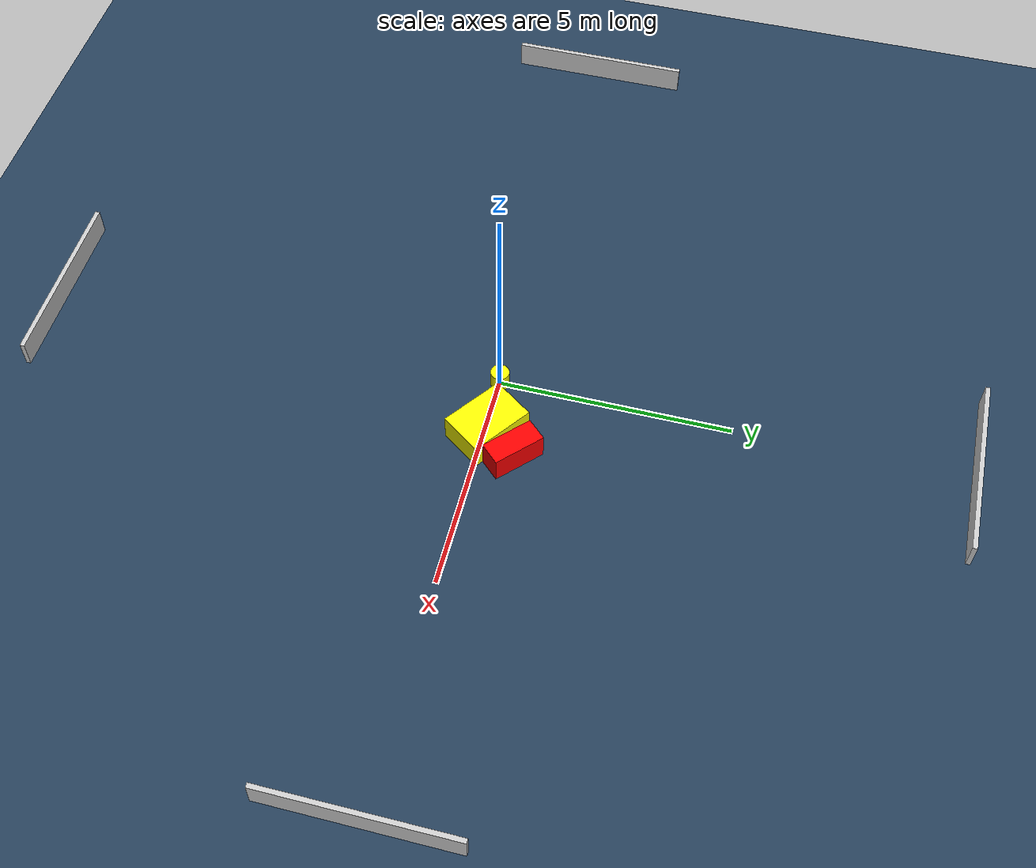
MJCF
<?xml version="1.0" ?>
<mujoco model="generated_environment">
  <option timestep="0.01" integrator="RK4" cone="elliptic"/>
  <default>
    <geom density="1"/>
  </default>
  <asset>
    <texture builtin="gradient" height="3072" name="skybox" rgb1="0.3 0.5 0.7" rgb2="0 0 0" type="skybox" width="512"/>
    <texture builtin="checker" height="300" name="groundplane" rgb1="0.2 0.3 0.4" rgb2="0.1 0.2 0.3" type="2d" width="300"/>
    <material name="groundplane" reflectance="0.2" texrepeat="5 5" texture="groundplane"/>
  </asset>
  <worldbody>
    <light dir="0 0 -1" directional="true" pos="0 0 1.5"/>
    <geom condim="3" friction="0.5 0.005 0.001" material="groundplane" name="floor" pos="0 0 0" size="0 0 0.05" type="plane"/>
    <body name="walls">
      <geom name="wall_1" condim="4" pos="-10.0 0.0 0.3" rgba="0.800000011920929 0.800000011920929 0.800000011920929 1.0" size="0.05 2.0 0.3" type="box"/>
      <geom name="wall_2" condim="4" pos="10.0 0.0 0.3" rgba="0.800000011920929 0.800000011920929 0.800000011920929 1.0" size="0.05 2.0 0.3" type="box"/>
      <geom name="wall_3" condim="4" pos="0.0 -10.0 0.3" rgba="0.800000011920929 0.800000011920929 0.800000011920929 1.0" size="2.0 0.05 0.3" type="box"/>
      <geom name="wall_4" condim="4" pos="0.0 10.0 0.3" rgba="0.800000011920929 0.800000011920929 0.800000011920929 1.0" size="2.0 0.05 0.3" type="box"/>
    </body>
    <body name="robot">
      <joint name="joint_x" type="slide" pos="0 0 0" axis="1 0 0"/>
      <joint name="joint_y" type="slide" pos="0 0 0" axis="0 1 0"/>
      <geom name="robot" type="cylinder" pos="0.0 0.0 0.2" size="0.2 0.2 0.0" mass="5.0" friction="1.0 0.005 0.0001" condim="4" rgba="1.0 1.0 0.0 1.0"/>
    </body>
    <body name="obstacle_1_movable">
      <geom name="obstacle_1_movable" condim="4" pos="1.303334201565804 0.058446602514052176 0.3" euler="0 0 234.6399808115731" friction="0.0 0.005 0.001" rgba="1.0 1.0 0.0 1.0" size="0.5005281206207176 0.7159296570385523 0.3" type="box" mass="0.1"/>
      <joint type="free"/>
    </body>
    <body name="obstacle_2_static">
      <geom name="obstacle_2_static" condim="4" pos="1.7913512931510007 0.7356952197570541 0.3" euler="0 0 46.665965704012834" friction="0.0 0.005 0.001" rgba="1.0 0.0 0.0 1.0" size="0.2567614994502783 0.575309612915836 0.3" type="box"/>
    </body>
  </worldbody>
  <actuator>
    <motor name="actuator_x" joint="joint_x" gear="1" ctrlrange="-1 1"/>
    <motor name="actuator_y" joint="joint_y" gear="1" ctrlrange="-1 1"/>
  </actuator>
</mujoco>
